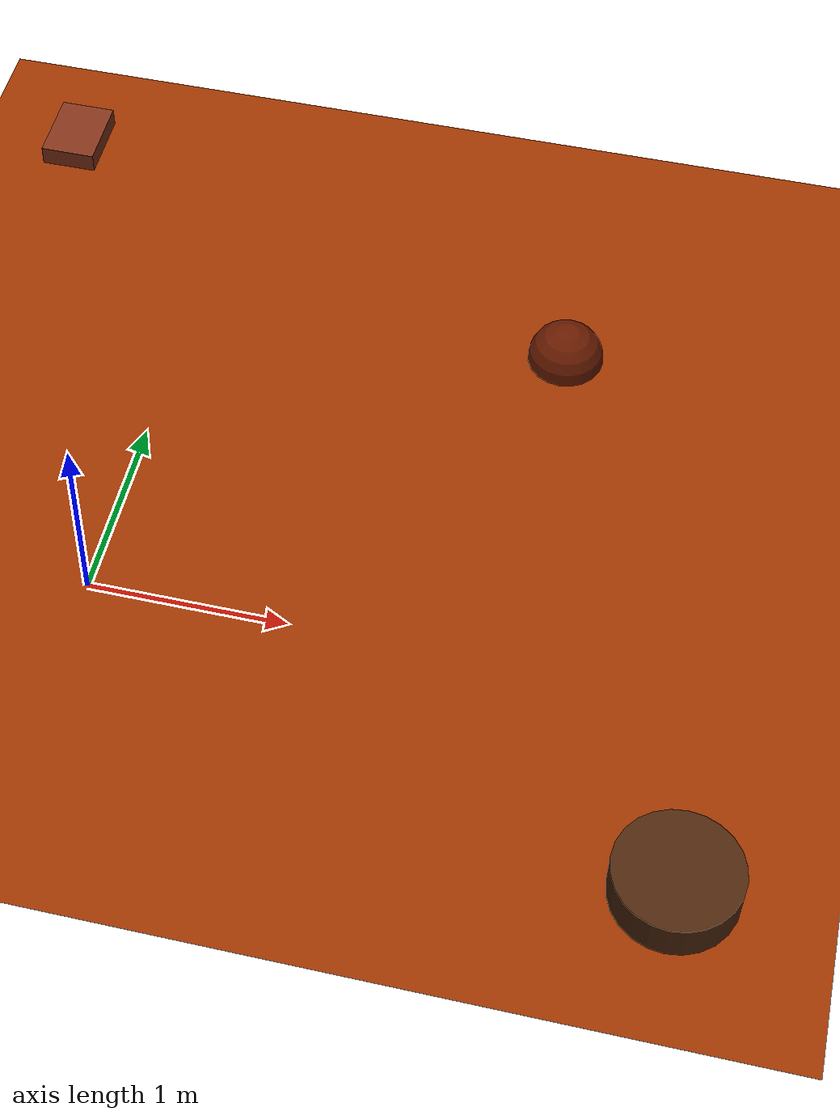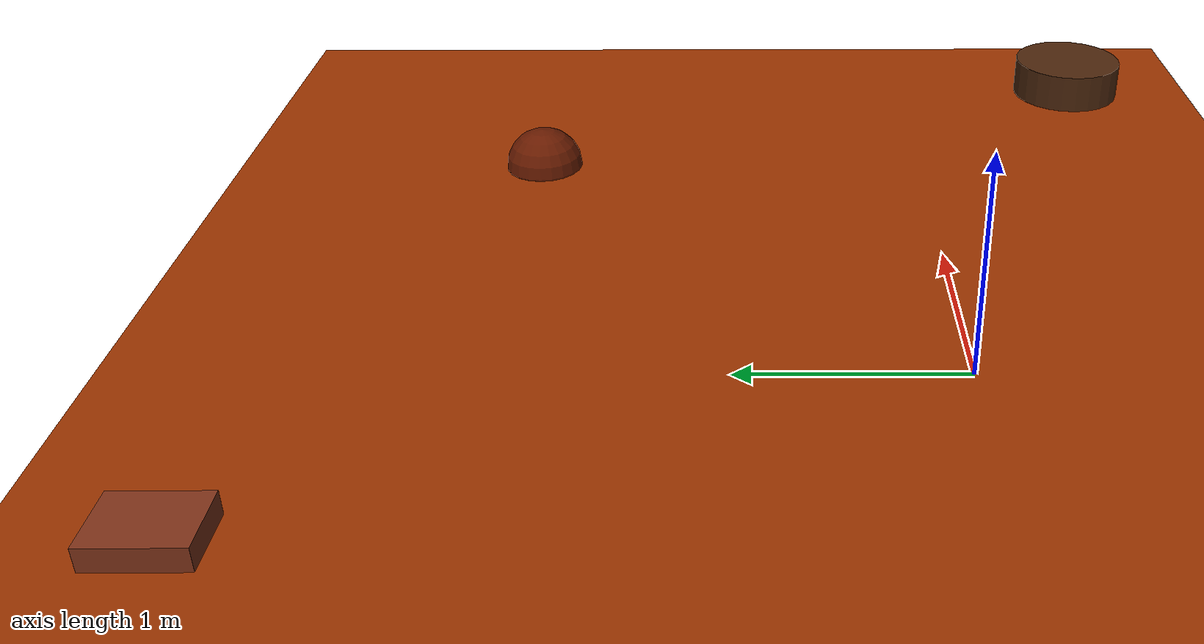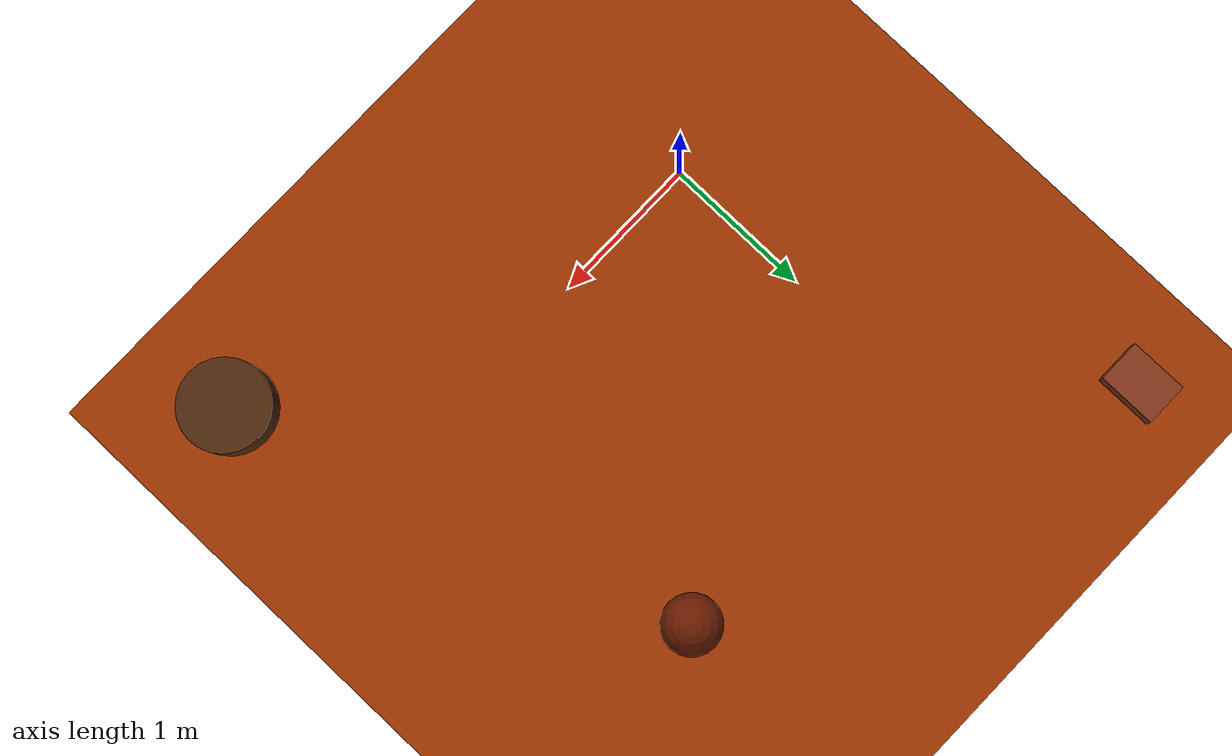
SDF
<?xml version="1.0" ?>
<sdf version="1.6">
  <world name="mars_terrain">
    <!-- Sun -->
    <include>
      <uri>model://sun</uri>
    </include>

    <!-- Mars Ground -->
    <model name="mars_ground">
      <static>true</static>
      <link name="link">
        <collision name="collision">
          <geometry>
            <plane>
              <normal>0 0 1</normal>
              <size>100 100</size>
            </plane>
          </geometry>
          <surface>
            <friction>
              <ode>
                <mu>100</mu>
                <mu2>50</mu2>
              </ode>
            </friction>
          </surface>
        </collision>
        <visual name="visual">
          <geometry>
            <plane>
              <normal>0 0 1</normal>
              <size>100 100</size>
            </plane>
          </geometry>
          <material>
            <ambient>0.6 0.2 0.0 1</ambient>
            <diffuse>0.6 0.2 0.0 1</diffuse>
            <specular>0.1 0.1 0.1 1</specular>
          </material>
        </visual>
      </link>
    </model>

    <!-- Rocks / Obstacles -->
    <model name="rock_1">
      <static>true</static>
      <pose>2 2 0 0 0 0</pose>
      <link name="link">
        <collision name="collision">
          <geometry>
            <sphere><radius>0.2</radius></sphere>
          </geometry>
        </collision>
        <visual name="visual">
          <geometry>
            <sphere><radius>0.2</radius></sphere>
          </geometry>
          <material>
            <ambient>0.4 0.1 0.0 1</ambient>
            <diffuse>0.4 0.1 0.0 1</diffuse>
          </material>
        </visual>
      </link>
    </model>

    <model name="rock_2">
      <static>true</static>
      <pose>-1 3 0 0 0 0</pose>
      <link name="link">
        <collision name="collision">
          <geometry>
            <box><size>0.3 0.4 0.2</size></box>
          </geometry>
        </collision>
        <visual name="visual">
          <geometry>
            <box><size>0.3 0.4 0.2</size></box>
          </geometry>
          <material>
            <ambient>0.5 0.2 0.1 1</ambient>
            <diffuse>0.5 0.2 0.1 1</diffuse>
          </material>
        </visual>
      </link>
    </model>

    <model name="rock_3">
      <static>true</static>
      <pose>3 -1 0 0 0 0</pose>
      <link name="link">
        <collision name="collision">
          <geometry>
            <cylinder>
              <radius>0.3</radius>
              <length>0.4</length>
            </cylinder>
          </geometry>
        </collision>
        <visual name="visual">
          <geometry>
            <cylinder>
              <radius>0.3</radius>
              <length>0.4</length>
            </cylinder>
          </geometry>
          <material>
            <ambient>0.3 0.15 0.05 1</ambient>
            <diffuse>0.3 0.15 0.05 1</diffuse>
          </material>
        </visual>
      </link>
    </model>
  </world>
</sdf>
